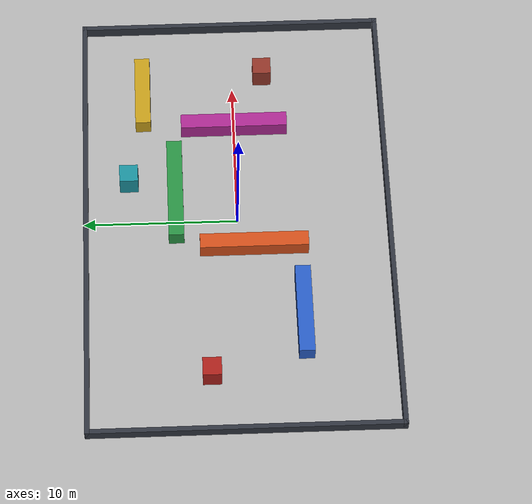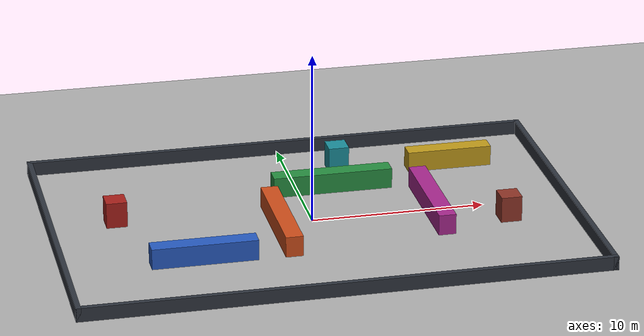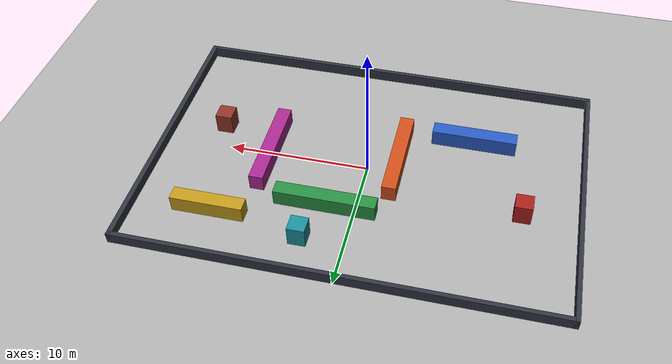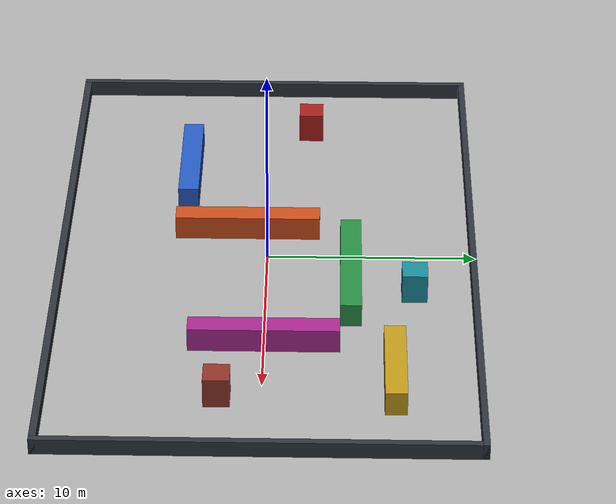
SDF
<?xml version="1.0"?>
<sdf version="1.8">
  <world name="complex_static">
    <physics name="1ms" type="ignored">
      <max_step_size>0.001</max_step_size>
      <real_time_factor>1</real_time_factor>
      <real_time_update_rate>1000</real_time_update_rate>
    </physics>
    <plugin filename="gz-sim-physics-system" name="gz::sim::systems::Physics"/>
    <plugin filename="gz-sim-imu-system" name="gz::sim::systems::Imu"/>
    <plugin filename="gz-sim-user-commands-system" name="gz::sim::systems::UserCommands"/>
    <plugin filename="gz-sim-scene-broadcaster-system" name="gz::sim::systems::SceneBroadcaster"/>
    <plugin filename="gz-sim-sensors-system" name="gz::sim::systems::Sensors">
      <render_engine>ogre2</render_engine>
    </plugin>
    <light type="directional" name="sun">
      <cast_shadows>true</cast_shadows><pose>0 0 15 0 0 0</pose>
      <diffuse>0.95 0.95 0.95 1</diffuse>
      <specular>0.25 0.25 0.25 1</specular>
      <direction>-0.5 0.1 -0.9</direction>
    </light>
    <model name="ground_plane">
      <static>true</static><link name="link">
        <collision name="collision"><geometry><plane><normal>0 0 1</normal><size>32 22</size></plane></geometry>
          <surface><friction><ode><mu>1.5</mu><mu2>1.5</mu2></ode></friction></surface></collision>
        <visual name="visual"><geometry><plane><normal>0 0 1</normal><size>32 22</size></plane></geometry>
          <material><ambient>0.68 0.68 0.68 1</ambient><diffuse>0.68 0.68 0.68 1</diffuse></material></visual>
      </link>
    </model>

    <!-- Boundary and shelves match complex_static.pgm exactly. -->
    <model name="wall_west"><static>true</static><pose>-14.85 0 0.4 0 0 0</pose><link name="link"><collision name="collision"><geometry><box><size>0.3 20 0.8</size></box></geometry></collision><visual name="visual"><geometry><box><size>0.3 20 0.8</size></box></geometry><material><ambient>0.18 0.20 0.24 1</ambient><diffuse>0.18 0.20 0.24 1</diffuse></material></visual></link></model>
    <model name="wall_east"><static>true</static><pose>14.85 0 0.4 0 0 0</pose><link name="link"><collision name="collision"><geometry><box><size>0.3 20 0.8</size></box></geometry></collision><visual name="visual"><geometry><box><size>0.3 20 0.8</size></box></geometry><material><ambient>0.18 0.20 0.24 1</ambient><diffuse>0.18 0.20 0.24 1</diffuse></material></visual></link></model>
    <model name="wall_south"><static>true</static><pose>0 -9.85 0.4 0 0 0</pose><link name="link"><collision name="collision"><geometry><box><size>30 0.3 0.8</size></box></geometry></collision><visual name="visual"><geometry><box><size>30 0.3 0.8</size></box></geometry><material><ambient>0.18 0.20 0.24 1</ambient><diffuse>0.18 0.20 0.24 1</diffuse></material></visual></link></model>
    <model name="wall_north"><static>true</static><pose>0 9.85 0.4 0 0 0</pose><link name="link"><collision name="collision"><geometry><box><size>30 0.3 0.8</size></box></geometry></collision><visual name="visual"><geometry><box><size>30 0.3 0.8</size></box></geometry><material><ambient>0.18 0.20 0.24 1</ambient><diffuse>0.18 0.20 0.24 1</diffuse></material></visual></link></model>

    <model name="shelf_a"><static>true</static><pose>-7 -4 0.6 0 0 0</pose><link name="link"><collision name="collision"><geometry><box><size>6 1 1.2</size></box></geometry></collision><visual name="visual"><geometry><box><size>6 1 1.2</size></box></geometry><material><ambient>0.15 0.35 0.75 1</ambient><diffuse>0.15 0.35 0.75 1</diffuse></material></visual></link></model>
    <model name="shelf_b"><static>true</static><pose>-2 -1 0.6 0 0 0</pose><link name="link"><collision name="collision"><geometry><box><size>1 7 1.2</size></box></geometry></collision><visual name="visual"><geometry><box><size>1 7 1.2</size></box></geometry><material><ambient>0.80 0.30 0.10 1</ambient><diffuse>0.80 0.30 0.10 1</diffuse></material></visual></link></model>
    <model name="shelf_c"><static>true</static><pose>2 4 0.6 0 0 0</pose><link name="link"><collision name="collision"><geometry><box><size>7 1 1.2</size></box></geometry></collision><visual name="visual"><geometry><box><size>7 1 1.2</size></box></geometry><material><ambient>0.15 0.55 0.25 1</ambient><diffuse>0.15 0.55 0.25 1</diffuse></material></visual></link></model>
    <model name="shelf_d"><static>true</static><pose>7 0 0.6 0 0 0</pose><link name="link"><collision name="collision"><geometry><box><size>1 7 1.2</size></box></geometry></collision><visual name="visual"><geometry><box><size>1 7 1.2</size></box></geometry><material><ambient>0.65 0.15 0.55 1</ambient><diffuse>0.65 0.15 0.55 1</diffuse></material></visual></link></model>
    <model name="shelf_e"><static>true</static><pose>9.5 6 0.6 0 0 0</pose><link name="link"><collision name="collision"><geometry><box><size>5 1 1.2</size></box></geometry></collision><visual name="visual"><geometry><box><size>5 1 1.2</size></box></geometry><material><ambient>0.75 0.60 0.10 1</ambient><diffuse>0.75 0.60 0.10 1</diffuse></material></visual></link></model>

    <model name="pillar_west"><static>true</static><pose>-11 2 0.75 0 0 0</pose><link name="link"><collision name="collision"><geometry><box><size>1.2 1.2 1.5</size></box></geometry></collision><visual name="visual"><geometry><box><size>1.2 1.2 1.5</size></box></geometry><material><ambient>0.65 0.12 0.10 1</ambient><diffuse>0.65 0.12 0.10 1</diffuse></material></visual></link></model>
    <model name="pillar_north"><static>true</static><pose>3 7 0.75 0 0 0</pose><link name="link"><collision name="collision"><geometry><box><size>1.2 1.2 1.5</size></box></geometry></collision><visual name="visual"><geometry><box><size>1.2 1.2 1.5</size></box></geometry><material><ambient>0.10 0.55 0.60 1</ambient><diffuse>0.10 0.55 0.60 1</diffuse></material></visual></link></model>
    <model name="pillar_east"><static>true</static><pose>11 -2 0.75 0 0 0</pose><link name="link"><collision name="collision"><geometry><box><size>1.2 1.2 1.5</size></box></geometry></collision><visual name="visual"><geometry><box><size>1.2 1.2 1.5</size></box></geometry><material><ambient>0.55 0.20 0.15 1</ambient><diffuse>0.55 0.20 0.15 1</diffuse></material></visual></link></model>
  </world>
</sdf>
